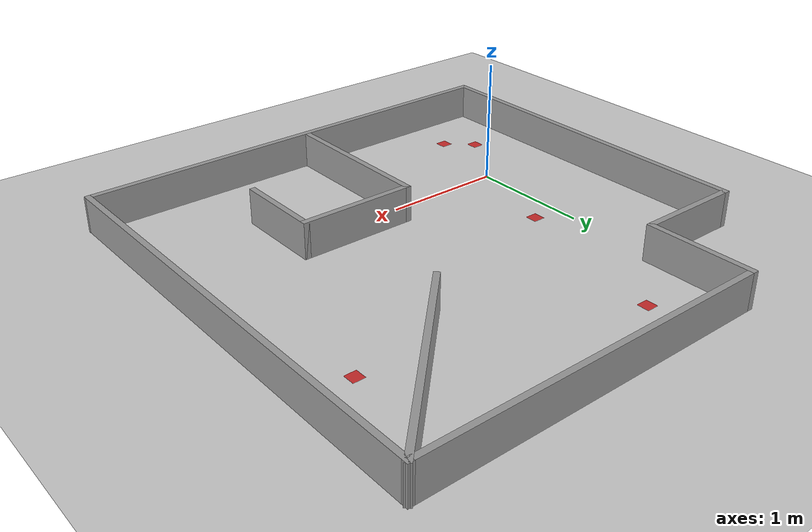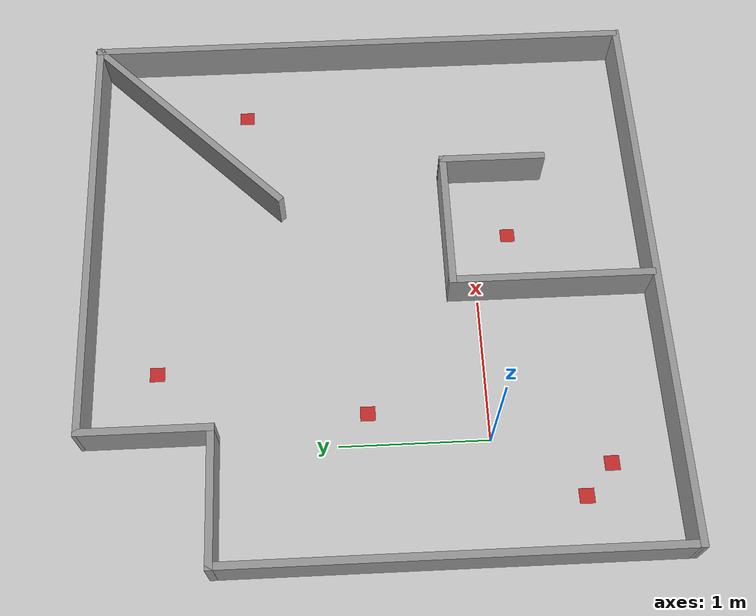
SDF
<sdf version="1.7">
 <world name="default">
  <light name="sun" type="directional">
   <pose>0 0 10 0 -0 0</pose>
   <diffuse>0.8 0.8 0.8 1</diffuse>
   <specular>0.2 0.2 0.2 1</specular>
   <attenuation>
    <range>1000</range>
    <constant>0.9</constant>
    <linear>0.01</linear>
    <quadratic>0.001</quadratic>
   </attenuation>
   <direction>-0.5 0.1 -0.9</direction>
   <spot><inner_angle>0</inner_angle><outer_angle>0</outer_angle><falloff>0</falloff></spot>
  </light>
  <model name="ground_plane">
   <static>1</static>
   <link name="link">
    <collision name="collision">
     <geometry><plane><normal>0 0 1</normal><size>100 100</size></plane></geometry>
     <surface>
      <contact><collide_bitmask>65535</collide_bitmask></contact>
      <friction><ode><mu>100</mu><mu2>50</mu2></ode></friction>
     </surface>
    </collision>
    <visual name="visual">
     <cast_shadows>0</cast_shadows>
     <geometry><plane><normal>0 0 1</normal><size>100 100</size></plane></geometry>
     <material>
      <script><uri>file://media/materials/scripts/gazebo.material</uri><name>Gazebo/Grey</name></script>
     </material>
    </visual>
   </link>
  </model>
  <gravity>0 0 -9.8</gravity>
  <magnetic_field>6e-06 2.3e-05 -4.2e-05</magnetic_field>
  <atmosphere type="adiabatic"/>
  <physics type="ode">
   <max_step_size>0.001</max_step_size>
   <real_time_factor>1</real_time_factor>
   <real_time_update_rate>1000</real_time_update_rate>
  </physics>
  <scene><ambient>0.4 0.4 0.4 1</ambient><background>0.7 0.7 0.7 1</background><shadows>1</shadows></scene>
  <spherical_coordinates>
   <surface_model>EARTH_WGS84</surface_model>
   <latitude_deg>0</latitude_deg>
   <longitude_deg>0</longitude_deg>
   <elevation>0</elevation>
   <heading_deg>0</heading_deg>
  </spherical_coordinates>
  <model name="labyrinth_small">
   <pose>1.12783 1.75501 0 0 -0 0</pose>
   <link name="Wall_12">
    <collision name="Wall_12_Collision">
     <geometry><box><size>0.75 0.05 0.3</size></box></geometry>
     <pose>0 0 0.15 0 -0 0</pose>
    </collision>
    <visual name="Wall_12_Visual">
     <pose>0 0 0.15 0 -0 0</pose>
     <geometry><box><size>0.75 0.05 0.3</size></box></geometry>
     <material>
      <script><uri>file://media/materials/scripts/gazebo.material</uri><name>Gazebo/Grey</name></script>
      <ambient>1 1 1 1</ambient>
     </material>
     <meta><layer>0</layer></meta>
    </visual>
    <pose>0.867897 -1.91647 0 0 -0 -1.5708</pose>
   </link>
   <link name="Wall_14">
    <collision name="Wall_14_Collision">
     <geometry><box><size>0.9 0.05 0.3</size></box></geometry>
     <pose>0 0 0.15 0 -0 0</pose>
    </collision>
    <visual name="Wall_14_Visual">
     <pose>0 0 0.15 0 -0 0</pose>
     <geometry><box><size>0.9 0.05 0.3</size></box></geometry>
     <material>
      <script><uri>file://media/materials/scripts/gazebo.material</uri><name>Gazebo/Grey</name></script>
      <ambient>1 1 1 1</ambient>
     </material>
     <meta><layer>0</layer></meta>
    </visual>
    <pose>-1.50032 0.048596 0 0 -0 0.000165</pose>
   </link>
   <link name="Wall_16">
    <collision name="Wall_16_Collision">
     <geometry><box><size>0.9 0.05 0.3</size></box></geometry>
     <pose>0 0 0.15 0 -0 0</pose>
    </collision>
    <visual name="Wall_16_Visual">
     <pose>0 0 0.15 0 -0 0</pose>
     <geometry><box><size>0.9 0.05 0.3</size></box></geometry>
     <material>
      <script><uri>file://media/materials/scripts/gazebo.material</uri><name>Gazebo/Grey</name></script>
      <ambient>1 1 1 1</ambient>
     </material>
     <meta><layer>0</layer></meta>
    </visual>
    <pose>-1.0481 0.473622 0 0 -0 -1.5708</pose>
   </link>
   <link name="Wall_2">
    <collision name="Wall_2_Collision">
     <geometry><box><size>3.9 0.05 0.3</size></box></geometry>
     <pose>0 0 0.15 0 -0 0</pose>
    </collision>
    <visual name="Wall_2_Visual">
     <pose>0 0 0.15 0 -0 0</pose>
     <geometry><box><size>3.9 0.05 0.3</size></box></geometry>
     <material>
      <script><uri>file://media/materials/scripts/gazebo.material</uri><name>Gazebo/Grey</name></script>
      <ambient>1 1 1 1</ambient>
     </material>
     <meta><layer>0</layer></meta>
    </visual>
    <pose>1.9149 -1.01847 0 0 -0 -1.5708</pose>
   </link>
   <link name="Wall_21">
    <collision name="Wall_21_Collision">
     <geometry><box><size>3.05 0.05 0.3</size></box></geometry>
     <pose>0 0 0.15 0 -0 0</pose>
    </collision>
    <visual name="Wall_21_Visual">
     <pose>0 0 0.15 0 -0 0</pose>
     <geometry><box><size>3.05 0.05 0.3</size></box></geometry>
     <material>
      <script><uri>file://media/materials/scripts/gazebo.material</uri><name>Gazebo/Grey</name></script>
      <ambient>1 1 1 1</ambient>
     </material>
     <meta><layer>0</layer></meta>
    </visual>
    <pose>-1.9251 -1.45147 0 0 -0 -1.5708</pose>
   </link>
   <link name="Wall_23">
    <collision name="Wall_23_Collision">
     <geometry><box><size>3.01301 0.05 0.3</size></box></geometry>
     <pose>0 0 0.15 0 -0 0</pose>
    </collision>
    <visual name="Wall_23_Visual">
     <pose>0 0 0.15 0 -0 0</pose>
     <geometry><box><size>3.01301 0.05 0.3</size></box></geometry>
     <material>
      <script><uri>file://media/materials/scripts/gazebo.material</uri><name>Gazebo/Grey</name></script>
      <ambient>1 1 1 1</ambient>
     </material>
     <meta><layer>0</layer></meta>
    </visual>
    <pose>0.433397 0.902526 0 0 -0 0.0027</pose>
   </link>
   <link name="Wall_3">
    <collision name="Wall_3_Collision">
     <geometry><box><size>3.89001 0.05 0.3</size></box></geometry>
     <pose>0 0 0.15 0 -0 0</pose>
    </collision>
    <visual name="Wall_3_Visual">
     <pose>0 0 0.15 0 -0 0</pose>
     <geometry><box><size>3.89001 0.05 0.3</size></box></geometry>
     <material>
      <script><uri>file://media/materials/scripts/gazebo.material</uri><name>Gazebo/Grey</name></script>
      <ambient>1 1 1 1</ambient>
     </material>
     <meta><layer>0</layer></meta>
    </visual>
    <pose>-0.005103 -2.94747 0 0 -0 -3.13951</pose>
   </link>
   <link name="Wall_6">
    <collision name="Wall_6_Collision">
     <geometry><box><size>1.9 0.05 0.3</size></box></geometry>
     <pose>0 0 0.15 0 -0 0</pose>
    </collision>
    <visual name="Wall_6_Visual">
     <pose>0 0 0.15 0 -0 0</pose>
     <geometry><box><size>1.9 0.05 0.3</size></box></geometry>
     <material>
      <script><uri>file://media/materials/scripts/gazebo.material</uri><name>Gazebo/Grey</name></script>
      <ambient>1 1 1 1</ambient>
     </material>
     <meta><layer>0</layer></meta>
    </visual>
    <pose>1.2609 0.252526 0 0 -0 -2.35619</pose>
   </link>
   <link name="Wall_8">
    <collision name="Wall_8_Collision">
     <geometry><box><size>1.40048 0.05 0.3</size></box></geometry>
     <pose>0 0 0.15 0 -0 0</pose>
    </collision>
    <visual name="Wall_8_Visual">
     <pose>0 0 0.15 0 -0 0</pose>
     <geometry><box><size>1.40048 0.05 0.3</size></box></geometry>
     <material>
      <script><uri>file://media/materials/scripts/gazebo.material</uri><name>Gazebo/Grey</name></script>
      <ambient>1 1 1 1</ambient>
     </material>
     <meta><layer>0</layer></meta>
    </visual>
    <pose>-0.082103 -2.24147 0 0 -0 1.5708</pose>
   </link>
   <link name="Wall_9">
    <collision name="Wall_9_Collision">
     <geometry><box><size>1 0.05 0.3</size></box></geometry>
     <pose>0 0 0.15 0 -0 0</pose>
    </collision>
    <visual name="Wall_9_Visual">
     <pose>0 0 0.15 0 -0 0</pose>
     <geometry><box><size>1 0.05 0.3</size></box></geometry>
     <material>
      <script><uri>file://media/materials/scripts/gazebo.material</uri><name>Gazebo/Grey</name></script>
      <ambient>1 1 1 1</ambient>
     </material>
     <meta><layer>0</layer></meta>
    </visual>
    <pose>0.392897 -1.56647 0 0 -0 0</pose>
   </link>
   <static>1</static>
  </model>
  <model name="Token5">
   <link name="link_0">
    <inertial>
     <mass>8.311e-05</mass>
     <inertia><ixx>9e-08</ixx><ixy>0</ixy><ixz>0</ixz><iyy>1.4e-07</iyy><iyz>0</iyz><izz>2.3e-07</izz></inertia>
    </inertial>
    <self_collide>1</self_collide>
    <kinematic>1</kinematic>
    <visual name="visual">
     <geometry><box><size>0.1 0.1 1e-05</size></box></geometry>
     <material>
      <lighting>1</lighting>
      <script><uri>file://media/materials/scripts/gazebo.material</uri><name>Gazebo/Grey</name></script>
      <shader type="pixel"><normal_map>__default__</normal_map></shader>
      <ambient>0.796 0.169 0.169 1</ambient>
      <diffuse>0.792 0.169 0.169 1</diffuse>
      <specular>0.298 0.298 0.298 1</specular>
      <emissive>0.792 0.169 0.169 1</emissive>
     </material>
    </visual>
    <collision name="collision">
     <max_contacts>1</max_contacts>
     <geometry><box><size>0.1 0.1 1e-05</size></box></geometry>
     <surface>
      <friction>
       <ode><mu>1</mu><mu2>1</mu2><fdir1>0 0 0</fdir1><slip1>0</slip1><slip2>0</slip2></ode>
       <torsional>
        <coefficient>1</coefficient>
        <patch_radius>0</patch_radius>
        <surface_radius>0</surface_radius>
        <use_patch_radius>1</use_patch_radius>
        <ode><slip>0</slip></ode>
       </torsional>
      </friction>
      <bounce><restitution_coefficient>0</restitution_coefficient><threshold>1e+06</threshold></bounce>
      <contact>
       <collide_without_contact>0</collide_without_contact>
       <collide_without_contact_bitmask>1</collide_without_contact_bitmask>
       <collide_bitmask>1</collide_bitmask>
       <ode>
        <soft_cfm>0</soft_cfm>
        <soft_erp>0.2</soft_erp>
        <kp>1e+13</kp>
        <kd>1</kd>
        <max_vel>0.01</max_vel>
        <min_depth>0</min_depth>
       </ode>
       <bullet>
        <split_impulse>1</split_impulse>
        <split_impulse_penetration_threshold>-0.01</split_impulse_penetration_threshold>
        <soft_cfm>0</soft_cfm>
        <soft_erp>0.2</soft_erp>
        <kp>1e+13</kp>
        <kd>1</kd>
       </bullet>
      </contact>
     </surface>
    </collision>
   </link>
   <static>0</static>
   <pose>-0.39442 -0.58321 0 0 -0 0</pose>
  </model>
  <model name="Token5_0">
   <link name="link_0">
    <inertial>
     <mass>8.311e-05</mass>
     <inertia><ixx>9e-08</ixx><ixy>0</ixy><ixz>0</ixz><iyy>1.4e-07</iyy><iyz>0</iyz><izz>2.3e-07</izz></inertia>
    </inertial>
    <self_collide>1</self_collide>
    <kinematic>1</kinematic>
    <visual name="visual">
     <geometry><box><size>0.1 0.1 1e-05</size></box></geometry>
     <material>
      <lighting>1</lighting>
      <script><uri>file://media/materials/scripts/gazebo.material</uri><name>Gazebo/Grey</name></script>
      <shader type="pixel"><normal_map>__default__</normal_map></shader>
      <ambient>0.796 0.169 0.169 1</ambient>
      <diffuse>0.792 0.169 0.169 1</diffuse>
      <specular>0.298 0.298 0.298 1</specular>
      <emissive>0.792 0.169 0.169 1</emissive>
     </material>
    </visual>
    <collision name="collision">
     <max_contacts>1</max_contacts>
     <geometry><box><size>0.1 0.1 1e-05</size></box></geometry>
     <surface>
      <friction>
       <ode><mu>1</mu><mu2>1</mu2><fdir1>0 0 0</fdir1><slip1>0</slip1><slip2>0</slip2></ode>
       <torsional>
        <coefficient>1</coefficient>
        <patch_radius>0</patch_radius>
        <surface_radius>0</surface_radius>
        <use_patch_radius>1</use_patch_radius>
        <ode><slip>0</slip></ode>
       </torsional>
      </friction>
      <bounce><restitution_coefficient>0</restitution_coefficient><threshold>1e+06</threshold></bounce>
      <contact>
       <collide_without_contact>0</collide_without_contact>
       <collide_without_contact_bitmask>1</collide_without_contact_bitmask>
       <collide_bitmask>1</collide_bitmask>
       <ode>
        <soft_cfm>0</soft_cfm>
        <soft_erp>0.2</soft_erp>
        <kp>1e+13</kp>
        <kd>1</kd>
        <max_vel>0.01</max_vel>
        <min_depth>0</min_depth>
       </ode>
       <bullet>
        <split_impulse>1</split_impulse>
        <split_impulse_penetration_threshold>-0.01</split_impulse_penetration_threshold>
        <soft_cfm>0</soft_cfm>
        <soft_erp>0.2</soft_erp>
        <kp>1e+13</kp>
        <kd>1</kd>
       </bullet>
      </contact>
     </surface>
    </collision>
   </link>
   <static>0</static>
   <pose>1.51762 -0.254981 0 0 -0 0</pose>
  </model>
  <model name="Token5_1">
   <link name="link_0">
    <inertial>
     <mass>8.311e-05</mass>
     <inertia><ixx>9e-08</ixx><ixy>0</ixy><ixz>0</ixz><iyy>1.4e-07</iyy><iyz>0</iyz><izz>2.3e-07</izz></inertia>
    </inertial>
    <self_collide>1</self_collide>
    <kinematic>1</kinematic>
    <visual name="visual">
     <geometry><box><size>0.1 0.1 1e-05</size></box></geometry>
     <material>
      <lighting>1</lighting>
      <script><uri>file://media/materials/scripts/gazebo.material</uri><name>Gazebo/Grey</name></script>
      <shader type="pixel"><normal_map>__default__</normal_map></shader>
      <ambient>0.796 0.169 0.169 1</ambient>
      <diffuse>0.792 0.169 0.169 1</diffuse>
      <specular>0.298 0.298 0.298 1</specular>
      <emissive>0.792 0.169 0.169 1</emissive>
     </material>
    </visual>
    <collision name="collision">
     <max_contacts>1</max_contacts>
     <geometry><box><size>0.1 0.1 1e-05</size></box></geometry>
     <surface>
      <friction>
       <ode><mu>1</mu><mu2>1</mu2><fdir1>0 0 0</fdir1><slip1>0</slip1><slip2>0</slip2></ode>
       <torsional>
        <coefficient>1</coefficient>
        <patch_radius>0</patch_radius>
        <surface_radius>0</surface_radius>
        <use_patch_radius>1</use_patch_radius>
        <ode><slip>0</slip></ode>
       </torsional>
      </friction>
      <bounce><restitution_coefficient>0</restitution_coefficient><threshold>1e+06</threshold></bounce>
      <contact>
       <collide_without_contact>0</collide_without_contact>
       <collide_without_contact_bitmask>1</collide_without_contact_bitmask>
       <collide_bitmask>1</collide_bitmask>
       <ode>
        <soft_cfm>0</soft_cfm>
        <soft_erp>0.2</soft_erp>
        <kp>1e+13</kp>
        <kd>1</kd>
        <max_vel>0.01</max_vel>
        <min_depth>0</min_depth>
       </ode>
       <bullet>
        <split_impulse>1</split_impulse>
        <split_impulse_penetration_threshold>-0.01</split_impulse_penetration_threshold>
        <soft_cfm>0</soft_cfm>
        <soft_erp>0.2</soft_erp>
        <kp>1e+13</kp>
        <kd>1</kd>
       </bullet>
      </contact>
     </surface>
    </collision>
   </link>
   <static>0</static>
   <pose>-0.184444 -0.774522 0 0 -0 0</pose>
  </model>
  <model name="Token5_2">
   <link name="link_0">
    <inertial>
     <mass>8.311e-05</mass>
     <inertia><ixx>9e-08</ixx><ixy>0</ixy><ixz>0</ixz><iyy>1.4e-07</iyy><iyz>0</iyz><izz>2.3e-07</izz></inertia>
    </inertial>
    <self_collide>1</self_collide>
    <kinematic>1</kinematic>
    <visual name="visual">
     <geometry><box><size>0.1 0.1 1e-05</size></box></geometry>
     <material>
      <lighting>1</lighting>
      <script><uri>file://media/materials/scripts/gazebo.material</uri><name>Gazebo/Grey</name></script>
      <shader type="pixel"><normal_map>__default__</normal_map></shader>
      <ambient>0.796 0.169 0.169 1</ambient>
      <diffuse>0.792 0.169 0.169 1</diffuse>
      <specular>0.298 0.298 0.298 1</specular>
      <emissive>0.792 0.169 0.169 1</emissive>
     </material>
    </visual>
    <collision name="collision">
     <max_contacts>1</max_contacts>
     <geometry><box><size>0.1 0.1 1e-05</size></box></geometry>
     <surface>
      <friction>
       <ode><mu>1</mu><mu2>1</mu2><fdir1>0 0 0</fdir1><slip1>0</slip1><slip2>0</slip2></ode>
       <torsional>
        <coefficient>1</coefficient>
        <patch_radius>0</patch_radius>
        <surface_radius>0</surface_radius>
        <use_patch_radius>1</use_patch_radius>
        <ode><slip>0</slip></ode>
       </torsional>
      </friction>
      <bounce><restitution_coefficient>0</restitution_coefficient><threshold>1e+06</threshold></bounce>
      <contact>
       <collide_without_contact>0</collide_without_contact>
       <collide_without_contact_bitmask>1</collide_without_contact_bitmask>
       <collide_bitmask>1</collide_bitmask>
       <ode>
        <soft_cfm>0</soft_cfm>
        <soft_erp>0.2</soft_erp>
        <kp>1e+13</kp>
        <kd>1</kd>
        <max_vel>0.01</max_vel>
        <min_depth>0</min_depth>
       </ode>
       <bullet>
        <split_impulse>1</split_impulse>
        <split_impulse_penetration_threshold>-0.01</split_impulse_penetration_threshold>
        <soft_cfm>0</soft_cfm>
        <soft_erp>0.2</soft_erp>
        <kp>1e+13</kp>
        <kd>1</kd>
       </bullet>
      </contact>
     </surface>
    </collision>
   </link>
   <static>0</static>
   <pose>0.224134 0.798909 0 0 -0 0</pose>
  </model>
  <model name="Token5_3">
   <link name="link_0">
    <inertial>
     <mass>8.311e-05</mass>
     <inertia><ixx>9e-08</ixx><ixy>0</ixy><ixz>0</ixz><iyy>1.4e-07</iyy><iyz>0</iyz><izz>2.3e-07</izz></inertia>
    </inertial>
    <self_collide>1</self_collide>
    <kinematic>1</kinematic>
    <visual name="visual">
     <geometry><box><size>0.1 0.1 1e-05</size></box></geometry>
     <material>
      <lighting>1</lighting>
      <script><uri>file://media/materials/scripts/gazebo.material</uri><name>Gazebo/Grey</name></script>
      <shader type="pixel"><normal_map>__default__</normal_map></shader>
      <ambient>0.796 0.169 0.169 1</ambient>
      <diffuse>0.792 0.169 0.169 1</diffuse>
      <specular>0.298 0.298 0.298 1</specular>
      <emissive>0.792 0.169 0.169 1</emissive>
     </material>
    </visual>
    <collision name="collision">
     <max_contacts>1</max_contacts>
     <geometry><box><size>0.1 0.1 1e-05</size></box></geometry>
     <surface>
      <friction>
       <ode><mu>1</mu><mu2>1</mu2><fdir1>0 0 0</fdir1><slip1>0</slip1><slip2>0</slip2></ode>
       <torsional>
        <coefficient>1</coefficient>
        <patch_radius>0</patch_radius>
        <surface_radius>0</surface_radius>
        <use_patch_radius>1</use_patch_radius>
        <ode><slip>0</slip></ode>
       </torsional>
      </friction>
      <bounce><restitution_coefficient>0</restitution_coefficient><threshold>1e+06</threshold></bounce>
      <contact>
       <collide_without_contact>0</collide_without_contact>
       <collide_without_contact_bitmask>1</collide_without_contact_bitmask>
       <collide_bitmask>1</collide_bitmask>
       <ode>
        <soft_cfm>0</soft_cfm>
        <soft_erp>0.2</soft_erp>
        <kp>1e+13</kp>
        <kd>1</kd>
        <max_vel>0.01</max_vel>
        <min_depth>0</min_depth>
       </ode>
       <bullet>
        <split_impulse>1</split_impulse>
        <split_impulse_penetration_threshold>-0.01</split_impulse_penetration_threshold>
        <soft_cfm>0</soft_cfm>
        <soft_erp>0.2</soft_erp>
        <kp>1e+13</kp>
        <kd>1</kd>
       </bullet>
      </contact>
     </surface>
    </collision>
   </link>
   <static>0</static>
   <pose>2.59741 1.59735 0 0 -0 0</pose>
  </model>
  <model name="Token5_4">
   <link name="link_0">
    <inertial>
     <mass>8.311e-05</mass>
     <inertia><ixx>9e-08</ixx><ixy>0</ixy><ixz>0</ixz><iyy>1.4e-07</iyy><iyz>0</iyz><izz>2.3e-07</izz></inertia>
    </inertial>
    <self_collide>1</self_collide>
    <kinematic>1</kinematic>
    <visual name="visual">
     <geometry><box><size>0.1 0.1 1e-05</size></box></geometry>
     <material>
      <lighting>1</lighting>
      <script><uri>file://media/materials/scripts/gazebo.material</uri><name>Gazebo/Grey</name></script>
      <shader type="pixel"><normal_map>__default__</normal_map></shader>
      <ambient>0.796 0.169 0.169 1</ambient>
      <diffuse>0.792 0.169 0.169 1</diffuse>
      <specular>0.298 0.298 0.298 1</specular>
      <emissive>0.792 0.169 0.169 1</emissive>
     </material>
    </visual>
    <collision name="collision">
     <max_contacts>1</max_contacts>
     <geometry><box><size>0.1 0.1 1e-05</size></box></geometry>
     <surface>
      <friction>
       <ode><mu>1</mu><mu2>1</mu2><fdir1>0 0 0</fdir1><slip1>0</slip1><slip2>0</slip2></ode>
       <torsional>
        <coefficient>1</coefficient>
        <patch_radius>0</patch_radius>
        <surface_radius>0</surface_radius>
        <use_patch_radius>1</use_patch_radius>
        <ode><slip>0</slip></ode>
       </torsional>
      </friction>
      <bounce><restitution_coefficient>0</restitution_coefficient><threshold>1e+06</threshold></bounce>
      <contact>
       <collide_without_contact>0</collide_without_contact>
       <collide_without_contact_bitmask>1</collide_without_contact_bitmask>
       <collide_bitmask>1</collide_bitmask>
       <ode>
        <soft_cfm>0</soft_cfm>
        <soft_erp>0.2</soft_erp>
        <kp>1e+13</kp>
        <kd>1</kd>
        <max_vel>0.01</max_vel>
        <min_depth>0</min_depth>
       </ode>
       <bullet>
        <split_impulse>1</split_impulse>
        <split_impulse_penetration_threshold>-0.01</split_impulse_penetration_threshold>
        <soft_cfm>0</soft_cfm>
        <soft_erp>0.2</soft_erp>
        <kp>1e+13</kp>
        <kd>1</kd>
       </bullet>
      </contact>
     </surface>
    </collision>
   </link>
   <static>0</static>
   <pose>0.564915 2.20268 0 0 -0 0</pose>
  </model>
 </world>
</sdf>
